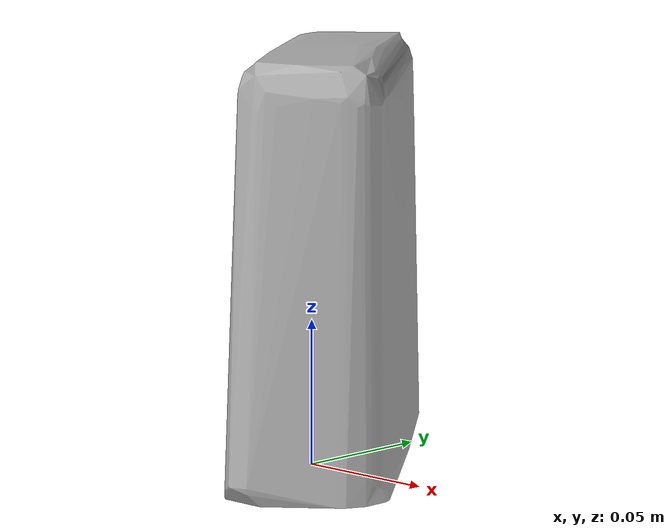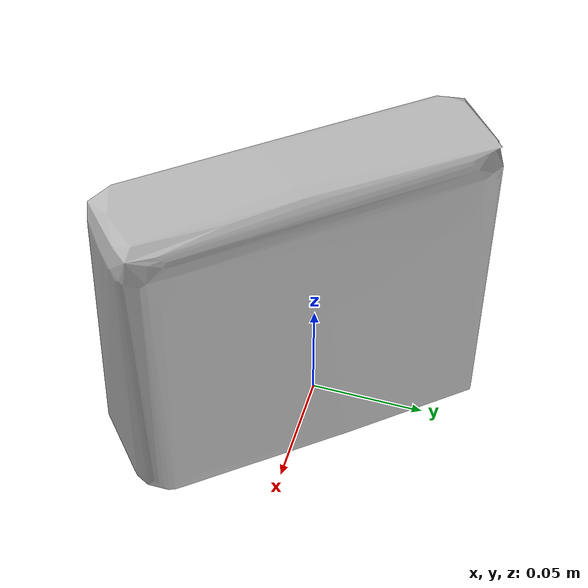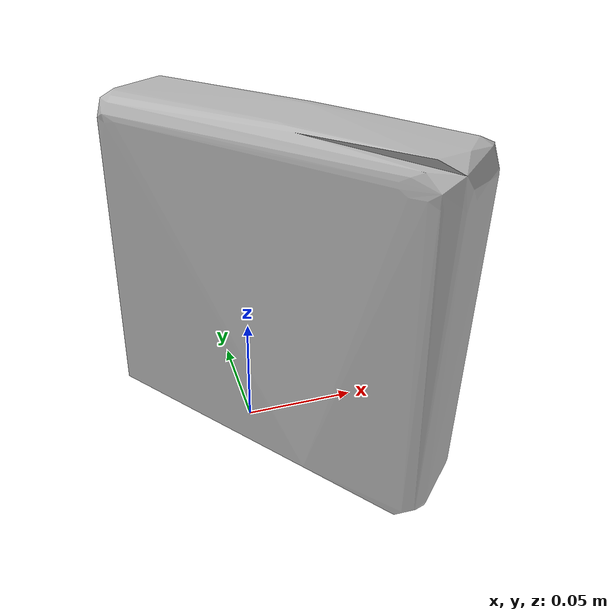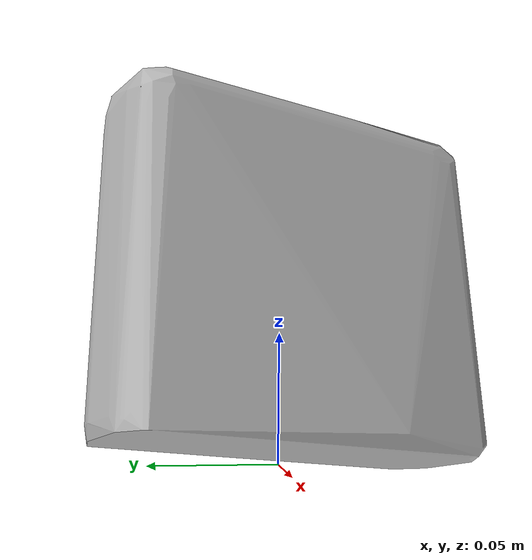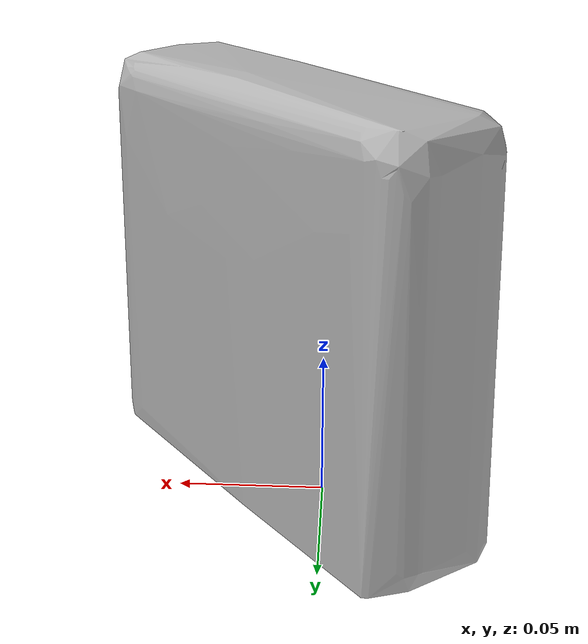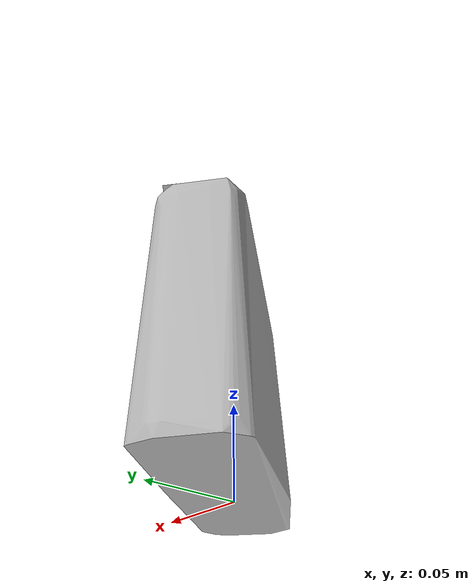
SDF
<?xml version='1.0'?>
<sdf version="1.4">
  <model name="nature_valley_sweet_and_salty_nut_roasted_mix_nut">
    <static>false</static>
    <link name="link">
      <inertial>
        <pose>0.011964654915842232 -0.0041952578821605226 0.0724298227219639 1.531984456002199 -0.012784893675622203 -2.468226935001064</pose>
        <mass>0.10668686681016833</mass>
        <inertia>
          <ixx>0.000374671988028125</ixx>
          <ixy>-1.6450786369002232e-21</ixy>
          <ixz>2.6748297218919682e-20</ixz>
          <iyy>0.0002310429046126536</iyy>
          <iyz>4.83129799822842e-22</iyz>
          <izz>0.0001876989917307754</izz>
        </inertia>
      </inertial>
      <collision name="collision">
        <geometry>
          <mesh>
            <!-- Use a downsampled mesh for collisions -->
            <uri>model:///nature_valley_sweet_and_salty_nut_roasted_mix_nut/nature_valley_sweet_and_salty_nut_roasted_mix_nut_250_collision.obj</uri>
	        </mesh>
        </geometry>
        <surface>
      </surface>
      </collision>
      <visual name="visual">
        <geometry>
          <mesh>
            <uri>model:///nature_valley_sweet_and_salty_nut_roasted_mix_nut/optimized_tsdf_texture_mapped_mesh.obj</uri>
	        </mesh>
        </geometry>
        <material>
          <script>
            <uri>model:///nature_valley_sweet_and_salty_nut_roasted_mix_nut/nature_valley_sweet_and_salty_nut_roasted_mix_nut.material</uri>
            <name>nature_valley_sweet_and_salty_nut_roasted_mix_nut</name>
          </script>
        </material>
      </visual>
    </link>
  </model>
</sdf>
